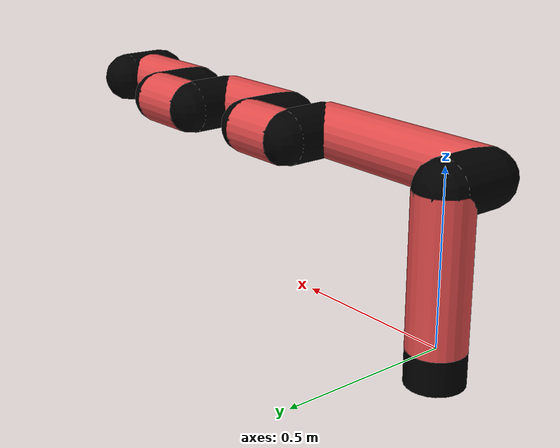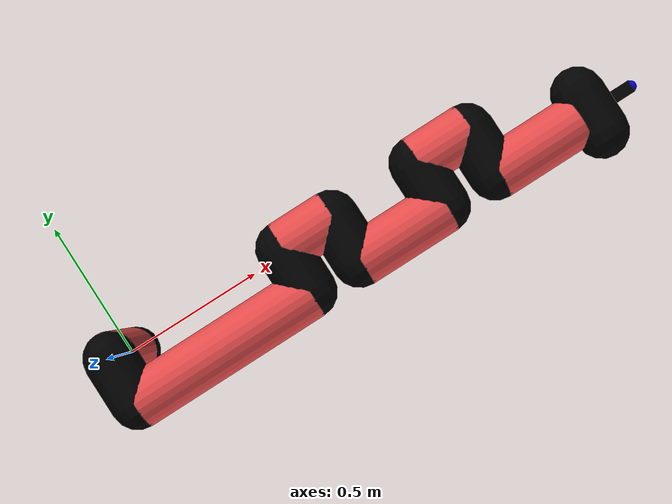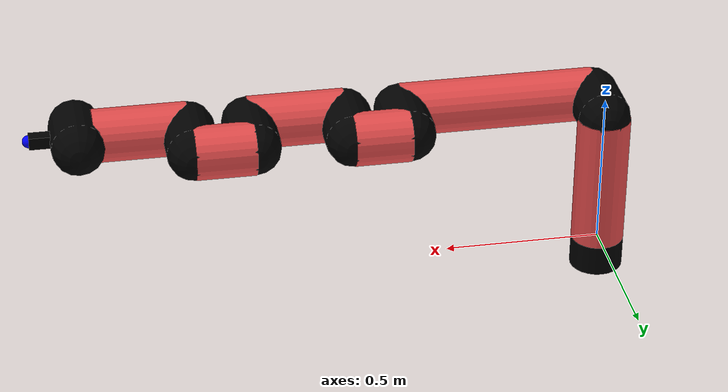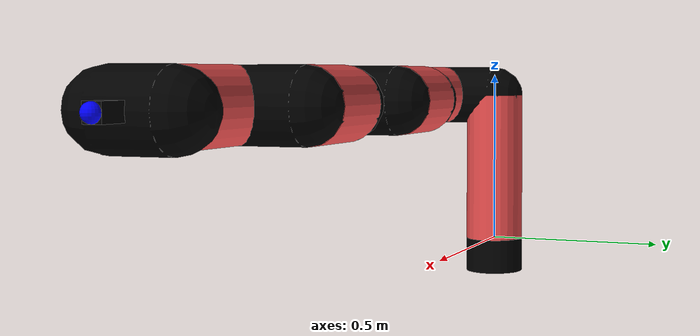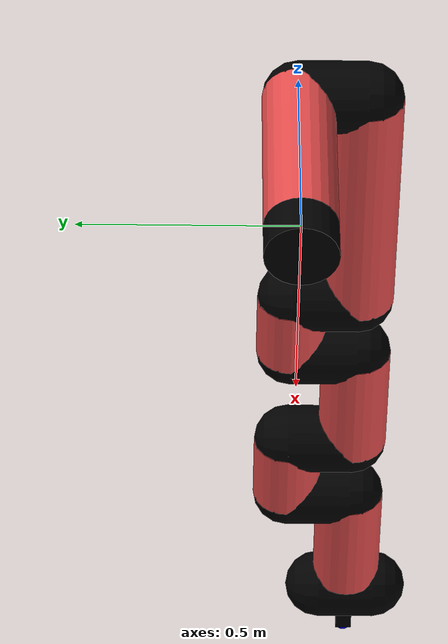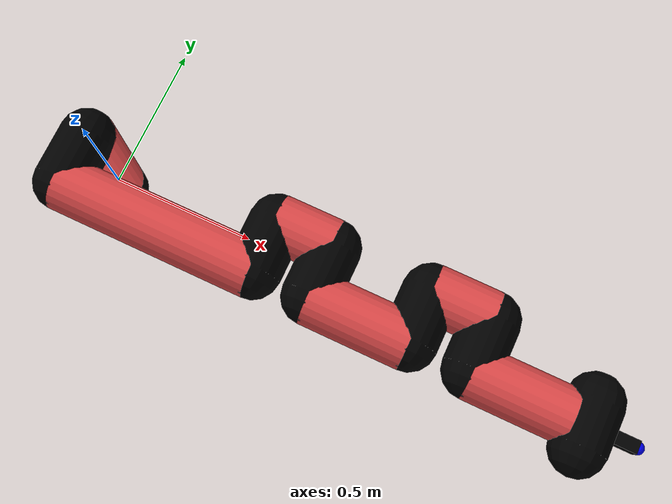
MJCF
<mujoco model="manipulator">
		<compiler angle="degree" coordinate="local" inertiafromgeom="auto" meshdir="meshes/"/>
		<option gravity="0 0 0" integrator="RK4" iterations="30" timestep="0.01"/>

		<default>
		<joint armature="1" limited="true" stiffness="10" damping="15" frictionloss="5.0"/>
		<geom conaffinity="1" condim="3" contype="1" friction=".5 .1 .1" margin="0.002"/>
		<motor ctrllimited="true"/>
		<position ctrllimited="true"/>
		</default>

		<asset>
		<texture builtin="gradient" height="100" rgb1="1.0 1.0 1.0" rgb2="1.0 1.0 1.0" type="skybox" width="100"/>
		<texture builtin="flat" height="32" name="arm_tex" rgb1="0.9 0.3 0.3" type="2d" width="32"/>
		<texture builtin="flat" height="32" name="gripper_tex" rgb1="0.0 0.0 0.0" type="cube" width="32"/>

		<material name="arm_mat" shininess="0.1" specular="0.1" texture="arm_tex"/>
		<material name="gripper_mat" shininess="1" specular="1" texture="gripper_tex"/>
		</asset>

		<worldbody>
		<light cutoff="45" diffuse=".8 .8 .8" dir="0 0.16 -1" directional="false" name="light" pos="0 -2.0 8.0" specular="0.3 0.3 0.3"/>

		<body name="base_link" pos="0 0 -0.1">
		<geom fromto="0 0 0 0 0 0.1" material="arm_mat" name="base_link" rgba="0.0 0.0 0.0 1" size="0.085" type="cylinder"/>
		</body>

		<body name="l1" pos="0 0 0">
<geom fromto="0 0 0 0 0 0.44" material="arm_mat" name="l1" rgba="0.9 0.3 0.3 1" size="0.085" type="cylinder"/>
<geom fromto="0 0 0.44 0 -0.16 0.44" material="arm_mat" name="l1_ex" rgba="0.0 0.0 0.0 1" size="0.085" type="capsule"/>
<joint axis="0 0 1" name="j1" pos="0 0 0" range="-90 90" damping="31.36" frictionloss="9.91"/>

<body name="l2" pos="0 -0.16 0.44">
<geom fromto="0 0 0 0.63 0 0" material="arm_mat" name="l2" rgba="0.9 0.3 0.3 1" size="0.085" type="cylinder"/>
<geom fromto="0.63 0 0 0.63 0.16 0" material="arm_mat" name="l2_ex" rgba="0.0 0.0 0.0 1" size="0.085" type="capsule"/>
<joint axis="0.0 1.0 0.0" name="j2" pos="0 0 0" range="-90 60" damping="32.12" frictionloss="8.83"/>

<body name="l3" pos="0.63 0.16 0">
<geom fromto="0 0 0 0.18 0 0" material="arm_mat" name="l3" rgba="0.9 0.3 0.3 1" size="0.085" type="cylinder"/>
<geom fromto="0.18 0 0 0.18 -0.16 0" material="arm_mat" name="l3_ex" rgba="0.0 0.0 0.0 1" size="0.085" type="capsule"/>
<joint axis="0.0 1.0 0.0" name="j3" pos="0 0 0" range="-30 60" damping="39.23" frictionloss="6.18"/>

<body name="l4" pos="0.18 -0.16 0">
<geom fromto="0 0 0 0.31 0 0" material="arm_mat" name="l4" rgba="0.9 0.3 0.3 1" size="0.085" type="cylinder"/>
<geom fromto="0.31 0 0 0.31 0.16 0" material="arm_mat" name="l4_ex" rgba="0.0 0.0 0.0 1" size="0.085" type="capsule"/>
<joint axis="0.0 1.0 0.0" name="j4" pos="0 0 0" range="-30 60" damping="43.95" frictionloss="12.61"/>

<body name="l5" pos="0.31 0.16 0">
<geom fromto="0 0 0 0.19 0 0" material="arm_mat" name="l5" rgba="0.9 0.3 0.3 1" size="0.085" type="cylinder"/>
<geom fromto="0.19 0 0 0.19 -0.16 0" material="arm_mat" name="l5_ex" rgba="0.0 0.0 0.0 1" size="0.085" type="capsule"/>
<joint axis="0.0 1.0 0.0" name="j5" pos="0 0 0" range="-30 60" damping="30.01" frictionloss="10.73"/>

<body name="l6" pos="0.19 -0.16 0">
<geom fromto="0 0 0 0.3 0 0" material="arm_mat" name="l6" rgba="0.9 0.3 0.3 1" size="0.085" type="cylinder"/>
<joint axis="0.0 1.0 0.0" name="j6" pos="0 0 0" range="-30 60" damping="25.7" frictionloss="10.28"/>

<body name="gripper" pos="0.3 0 0">
<geom fromto="0.05 -0.07 0 0.05 0.07 0" material="gripper_mat" name="gripper" rgba="0.0 0.0 0.0 1" size="0.085" type="capsule"/><joint axis="1 0 0" name="j7" pos="0 0 0" range="-90 90" damping="15" frictionloss="5.0"/><body name="finger" pos="0.1 0 0">
<geom fromto="0 0.0 0 0.1 0.0 0" material="gripper_mat" name="finger" rgba="0.0 0.0 0.0 1" size="0.020 0.06 0.06" type="box"/>
</body>
<site name="current" pos="0.2 0. 0.0" rgba="0. 0. 1.0 1" size="0.02" type="sphere"/>
</body>
</body>
</body>
</body>
</body>
</body>
</body>
</worldbody>
<actuator>
<motor ctrllimited="true" ctrlrange="-1.0 1.0" joint="j1" gear="108.46"/>
<motor ctrllimited="true" ctrlrange="-1.0 1.0" joint="j2" gear="62.72"/>
<motor ctrllimited="true" ctrlrange="-1.0 1.0" joint="j3" gear="99.78"/>
<motor ctrllimited="true" ctrlrange="-1.0 1.0" joint="j4" gear="117.88"/>
<motor ctrllimited="true" ctrlrange="-1.0 1.0" joint="j5" gear="64.9"/>
<motor ctrllimited="true" ctrlrange="-1.0 1.0" joint="j6" gear="40.07"/>
<motor ctrllimited="true" ctrlrange="-1.0 1.0" joint="j7" gear="80"/>
</actuator>
</mujoco>
